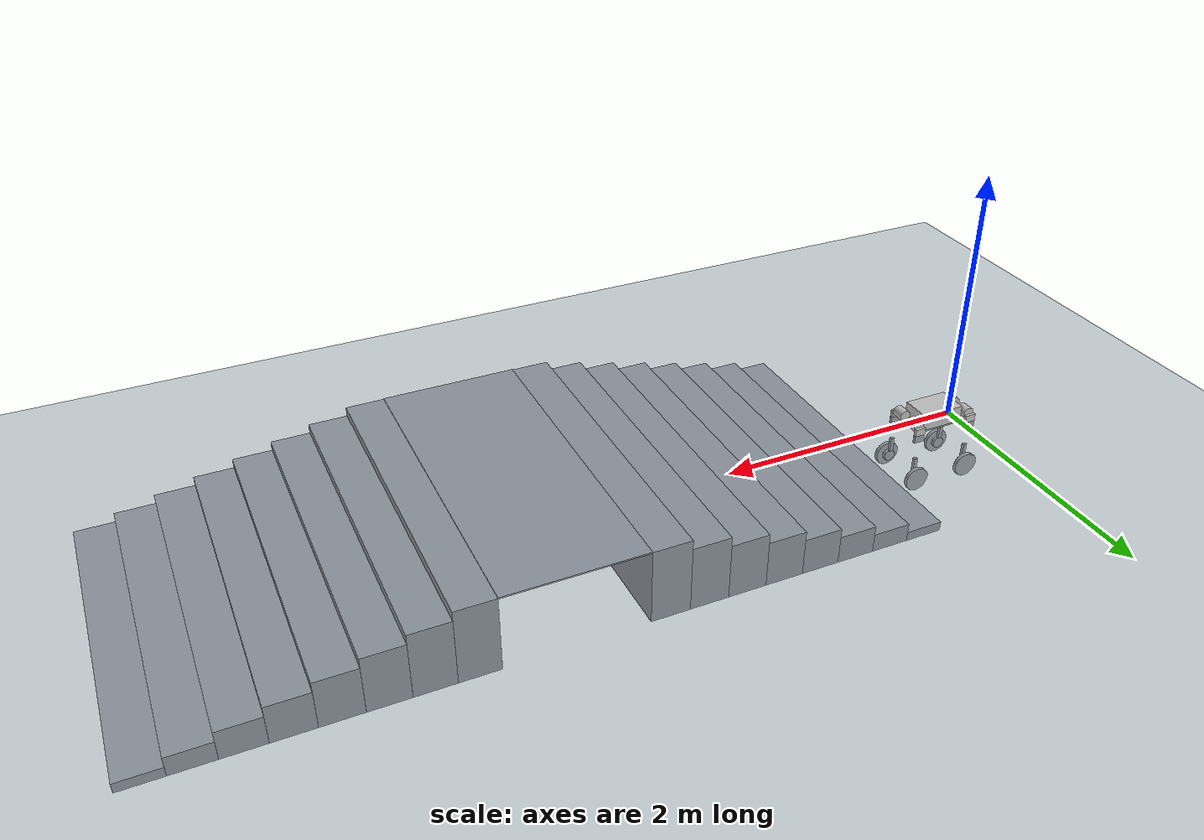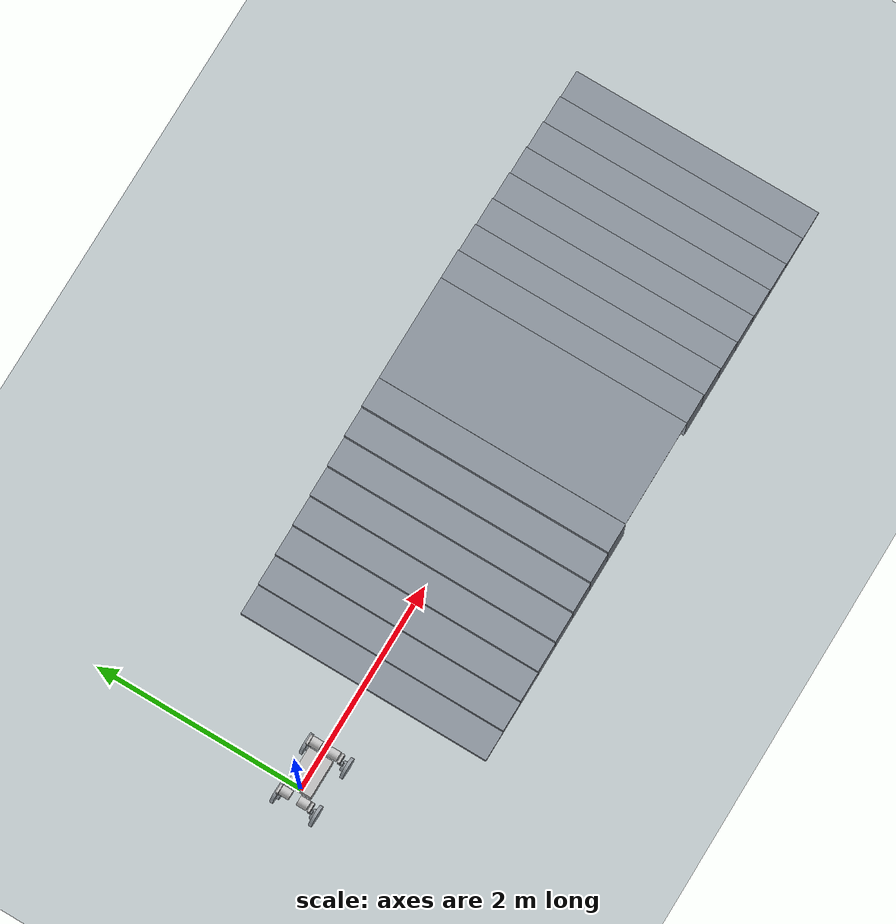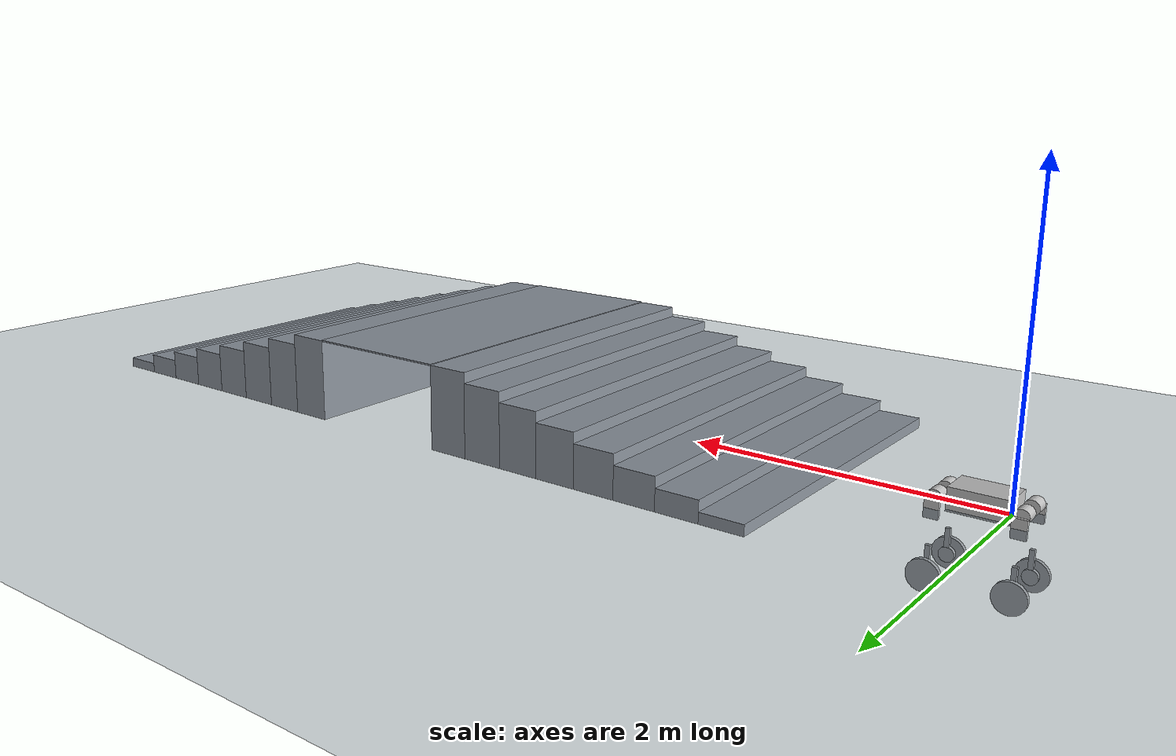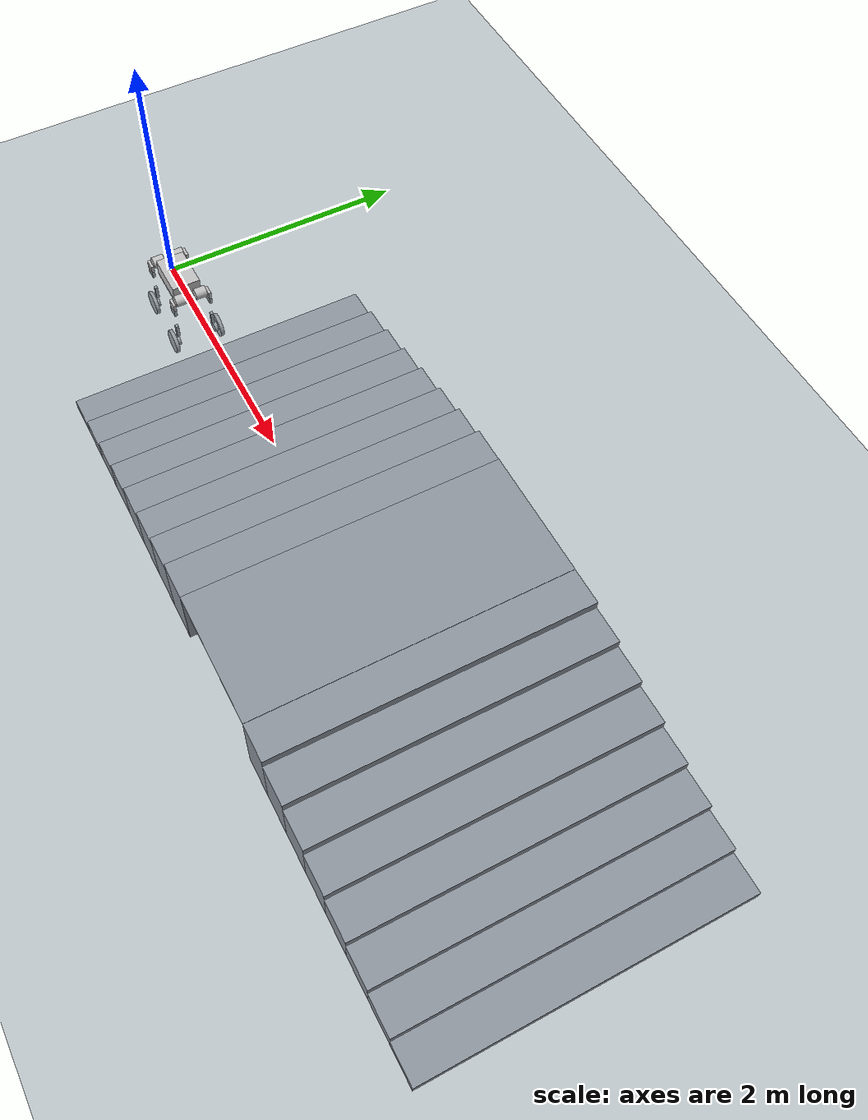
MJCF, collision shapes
<mujoco model="zexw_stairs">
  <include file="../model/robot.xml"/>
  <compiler meshdir="../model/assets"/>

  <option timestep="0.002" gravity="0 0 -9.81" integrator="implicitfast"/>

  <visual>
    <headlight diffuse="0.82 0.86 0.9" ambient="0.42 0.48 0.54" specular="0.15 0.15 0.18"/>
    <global azimuth="120" elevation="-20"/>
  </visual>

  <asset>
    <texture type="skybox" builtin="gradient" rgb1="0.3 0.5 0.7" rgb2="0 0 0" width="512" height="3072"/>
    <texture type="2d" name="groundplane" builtin="checker" mark="edge"
      rgb1="0.28 0.38 0.46" rgb2="0.16 0.23 0.30" markrgb="0.56 0.64 0.70" width="300" height="300"/>
    <material name="groundplane" texture="groundplane" texuniform="true" texrepeat="5 5" reflectance="0.2"/>
    <material name="terrain" rgba="0.55 0.58 0.62 1" reflectance="0.05"/>
  </asset>

  <worldbody>
    <light pos="0 0 3" dir="0 0 -1" directional="true"/>
    <geom name="floor" size="0 0 0.05" type="plane" material="groundplane" friction="0.8 0.05 0.01"/>
    <geom name="step_1" type="box" pos="1.1400 0.0000 0.0350" size="0.1400 1.2000 0.0350" material="terrain"/>
    <geom name="step_2" type="box" pos="1.4200 0.0000 0.0700" size="0.1400 1.2000 0.0700" material="terrain"/>
    <geom name="step_3" type="box" pos="1.7000 0.0000 0.1050" size="0.1400 1.2000 0.1050" material="terrain"/>
    <geom name="step_4" type="box" pos="1.9800 0.0000 0.1400" size="0.1400 1.2000 0.1400" material="terrain"/>
    <geom name="step_5" type="box" pos="2.2600 0.0000 0.1750" size="0.1400 1.2000 0.1750" material="terrain"/>
    <geom name="step_6" type="box" pos="2.5400 0.0000 0.2100" size="0.1400 1.2000 0.2100" material="terrain"/>
    <geom name="step_7" type="box" pos="2.8200 0.0000 0.2450" size="0.1400 1.2000 0.2450" material="terrain"/>
    <geom name="step_8" type="box" pos="3.1000 0.0000 0.2800" size="0.1400 1.2000 0.2800" material="terrain"/>
    <geom name="stair_top" type="box" pos="3.7400 0.0000 0.5600" size="0.5000 1.2000 0.0050" material="terrain"/>
    <geom name="step_down_8" type="box" pos="4.3800 0.0000 0.2800" size="0.1400 1.2000 0.2800" material="terrain"/>
    <geom name="step_down_7" type="box" pos="4.6600 0.0000 0.2450" size="0.1400 1.2000 0.2450" material="terrain"/>
    <geom name="step_down_6" type="box" pos="4.9400 0.0000 0.2100" size="0.1400 1.2000 0.2100" material="terrain"/>
    <geom name="step_down_5" type="box" pos="5.2200 0.0000 0.1750" size="0.1400 1.2000 0.1750" material="terrain"/>
    <geom name="step_down_4" type="box" pos="5.5000 0.0000 0.1400" size="0.1400 1.2000 0.1400" material="terrain"/>
    <geom name="step_down_3" type="box" pos="5.7800 0.0000 0.1050" size="0.1400 1.2000 0.1050" material="terrain"/>
    <geom name="step_down_2" type="box" pos="6.0600 0.0000 0.0700" size="0.1400 1.2000 0.0700" material="terrain"/>
    <geom name="step_down_1" type="box" pos="6.3400 0.0000 0.0350" size="0.1400 1.2000 0.0350" material="terrain"/>
  </worldbody>
</mujoco>

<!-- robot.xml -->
<mujoco model="wheelleg">
  <compiler angle="radian" meshdir="assets/"/>

  <default>
    <geom margin="0"/>
  </default>
  <asset>
    <mesh name="base_link" content_type="model/stl" file="base_link.STL"/>
    <mesh name="fl_hip_abduction_Link" content_type="model/stl" file="fl_hip_abduction_Link.STL"/>
    <mesh name="fl_hip_pitch_Link" content_type="model/stl" file="fl_hip_pitch_Link.STL"/>
    <mesh name="fl_knee_Link" content_type="model/stl" file="fl_knee_Link.STL"/>
    <mesh name="fl_wheel_Link" content_type="model/stl" file="fl_wheel_Link.STL"/>
    <mesh name="fr_hip_abduction_Link" content_type="model/stl" file="fr_hip_abduction_Link.STL"/>
    <mesh name="fr_hip_pitch_Link" content_type="model/stl" file="fr_hip_pitch_Link.STL"/>
    <mesh name="fr_knee_Link" content_type="model/stl" file="fr_knee_Link.STL"/>
    <mesh name="fr_wheel_Link" content_type="model/stl" file="fr_wheel_Link.STL"/>
    <mesh name="rl_hip_abduction_Link" content_type="model/stl" file="rl_hip_abduction_Link.STL"/>
    <mesh name="rl_hip_pitch_Link" content_type="model/stl" file="rl_hip_pitch_Link.STL"/>
    <mesh name="rl_knee_Link" content_type="model/stl" file="rl_knee_Link.STL"/>
    <mesh name="rl_wheel_Link" content_type="model/stl" file="rl_wheel_Link.STL"/>
    <mesh name="rr_hip_abduction_Link" content_type="model/stl" file="rr_hip_abduction_Link.STL"/>
    <mesh name="rr_hip_pitch_Link" content_type="model/stl" file="rr_hip_pitch_Link.STL"/>
    <mesh name="rr_knee_Link" content_type="model/stl" file="rr_knee_Link.STL"/>
    <mesh name="rr_wheel_Link" content_type="model/stl" file="rr_wheel_Link.STL"/>
  </asset>

  <worldbody>
    <body name="base_link">
      <inertial pos="0.1517 0.0002 0.0542" mass="6.5377" fullinertia="0.0402 0.1689 0.1840 -0.0001 0.0000 0.0000"/>
      <joint type="free"/>
      <geom type="mesh" contype="0" conaffinity="0" group="1" density="0" rgba="0.75294 0.75294 0.75294 1" mesh="base_link"/>
      <geom size="0.178 0.1175 0.073" pos="0.1518 0 0.054" type="box" rgba="0.75294 0.75294 0.75294 1"/>
      <body name="fl_hip_abduction_Link" pos="0.32826 0.066172 0.053981">
        <inertial pos="0.0488 -0.0026 0.0007" mass="0.63" fullinertia="0.0004 0.0007 0.0006 0.0000 0.0000 0.0000"/>
        <joint name="fl_hip_abduction_joint" pos="0 0 0" axis="1 0 0" range="-0.436 0.611" actuatorfrcrange="-17 17" damping="0.01" frictionloss="0.01" armature="0.0042"/>
        <geom type="mesh" contype="0" conaffinity="0" group="1" density="0" rgba="0.75294 0.75294 0.75294 1" mesh="fl_hip_abduction_Link"/>
        <body name="fl_hip_pitch_Link" pos="0.06389 -0.027344 0.00010727" quat="0.999997 -0.0025023 0 0">
          <inertial pos="0.0019 0.1119 -0.0480" mass="0.998" fullinertia="0.0066 0.0068 0.0011 0.0000 0.0000 0.0004"/>
          <joint name="fl_hip_pitch_joint" pos="0 0 0" axis="0 1 0" range="-2.58 2.58" actuatorfrcrange="-17 17" damping="0.01" frictionloss="0.01" armature="0.0042"/>
          <geom type="mesh" contype="0" conaffinity="0" group="1" density="0" rgba="0.75294 0.75294 0.75294 1" mesh="fl_hip_pitch_Link"/>
          <geom size="0.046 0.048" pos="0 0.048 0" quat="0.707105 0.707108 0 0" type="cylinder" rgba="0.75294 0.75294 0.75294 1"/>
          <geom size="0.0435 0.0115 0.06" pos="0 0.1155 -0.06" type="box" rgba="0.75294 0.75294 0.75294 1"/>
          <body name="fl_knee_Link" pos="0 0.1035 -0.25" quat="0.999997 0.0025023 0 0">
            <inertial pos="0.0002 0.0242 -0.1539" mass="0.6965" fullinertia="0.0045 0.0048 0.0006 0.0000 0.0000 0.0002"/>
            <joint name="fl_knee_joint" pos="0 0 0" axis="0 1 0" range="-2.65 2.65" actuatorfrcrange="-17 17" damping="0.01" frictionloss="0.01" armature="0.0042"/>
            <geom type="mesh" contype="0" conaffinity="0" group="1" density="0" rgba="0.75294 0.75294 0.75294 1" mesh="fl_knee_Link"/>
            <geom size="0.0475 0.015" pos="0 0.025 -0.20011" quat="0.707105 0.707108 0 0" type="cylinder" rgba="0.75294 0.75294 0.75294 1"/>
            <geom size="0.015 0.0125 0.06" pos="0 0.0125 -0.09" type="box" rgba="0.75294 0.75294 0.75294 1"/>
            <body name="fl_wheel_Link" pos="0 0.014699 -0.20011">
              <inertial pos="-0.0002 0.0407 -0.0001" mass="0.5505" fullinertia="0.0017 0.0034 0.0017 0.0000 0.0000 0.0000"/>
              <joint name="fl_wheel_joint" pos="0 0 0" axis="0 1 0" actuatorfrcrange="-17 17" damping="0.01" frictionloss="0.01" armature="0.0042"/>
              <geom type="mesh" contype="0" conaffinity="0" group="1" density="0" rgba="0.75294 0.75294 0.75294 1" mesh="fl_wheel_Link"/>
              <geom size="0.1 0.015" pos="0 0.04074 0" quat="0.707105 0.707108 0 0" type="cylinder" rgba="0.75294 0.75294 0.75294 1"/>
            </body>
          </body>
        </body>
      </body>
      <body name="fr_hip_abduction_Link" pos="0.32826 -0.065853 0.054034">
        <inertial pos="0.0488 0.0026 0.0008" mass="0.63" fullinertia="0.0004 0.0007 0.0006 0.0000 0.0000 0.0000"/>
        <joint name="fr_hip_abduction_joint" pos="0 0 0" axis="1 0 0" range="-0.611 0.436" actuatorfrcrange="-17 17" damping="0.01" frictionloss="0.01" armature="0.0042"/>
        <geom type="mesh" contype="0" conaffinity="0" group="1" density="0" rgba="0.75294 0.75294 0.75294 1" mesh="fr_hip_abduction_Link"/>
        <body name="fr_hip_pitch_Link" pos="0.06389 0.027311 -0.00036027" quat="0.999976 -0.00686995 0 0">
          <inertial pos="-0.0019 -0.1119 -0.048" mass="0.998" fullinertia="0.0066 0.0068 0.0011 0.0000 0.0000 0.0004"/>
          <joint name="fr_hip_pitch_joint" pos="0 0 0" axis="0 1 0" range="-2.58 2.58" actuatorfrcrange="-17 17" damping="0.01" frictionloss="0.01" armature="0.0042"/>
          <geom type="mesh" contype="0" conaffinity="0" group="1" density="0" rgba="0.75294 0.75294 0.75294 1" mesh="fr_hip_pitch_Link"/>
          <geom size="0.046 0.048" pos="0 -0.048 0" quat="0.707105 0.707108 0 0" type="cylinder" rgba="0.75294 0.75294 0.75294 1"/>
          <geom size="0.0435 0.0115 0.06" pos="0 -0.1155 -0.06" type="box" rgba="0.75294 0.75294 0.75294 1"/>
          <body name="fr_knee_Link" pos="-0.00075079 -0.1035 -0.25" quat="0.999976 0.00686995 0 0">
            <inertial pos="-0.0002 -0.0242 -0.1539" mass="0.6965" fullinertia="0.0045 0.0048 0.0006 0.0000 0.0000 0.0002"/>
            <joint name="fr_knee_joint" pos="0 0 0" axis="0 1 0" range="-2.65 2.65" actuatorfrcrange="-17 17" damping="0.01" frictionloss="0.01" armature="0.0042"/>
            <geom type="mesh" contype="0" conaffinity="0" group="1" density="0" rgba="0.75294 0.75294 0.75294 1" mesh="fr_knee_Link"/>
            <geom size="0.0475 0.015" pos="0 -0.025 -0.1998" quat="0.707105 0.707108 0 0" type="cylinder" rgba="0.75294 0.75294 0.75294 1"/>
            <geom size="0.015 0.0125 0.06" pos="0 -0.0125 -0.09" type="box" rgba="0.75294 0.75294 0.75294 1"/>
            <body name="fr_wheel_Link" pos="0 -0.018447 -0.1998">
              <inertial pos="0.0002 -0.0407 -0.0001" mass="0.5505" fullinertia="0.0017 0.0034 0.0017 0.0000 0.0000 0.0000"/>
              <joint name="fr_wheel_joint" pos="0 0 0" axis="0 1 0" actuatorfrcrange="-17 17" damping="0.01" frictionloss="0.01" armature="0.0042"/>
              <geom type="mesh" contype="0" conaffinity="0" group="1" density="0" rgba="0.75294 0.75294 0.75294 1" mesh="fr_wheel_Link"/>
              <geom size="0.1 0.015" pos="0 -0.040735 0" quat="0.707105 0.707108 0 0" type="cylinder" rgba="0.75294 0.75294 0.75294 1"/>
            </body>
          </body>
        </body>
      </body>
      <body name="rl_hip_abduction_Link" pos="-0.024743 0.066141 0.054034">
        <inertial pos="-0.0488 -0.0026 -0.0007" mass="0.63" fullinertia="0.0004 0.0007 0.0006 0.0000 0.0000 0.0000"/>
        <joint name="rl_hip_abduction_joint" pos="0 0 0" axis="1 0 0" range="-0.436 0.611" actuatorfrcrange="-17 17" damping="0.01" frictionloss="0.01" armature="0.0042"/>
        <geom type="mesh" contype="0" conaffinity="0" group="1" density="0" rgba="0.75294 0.75294 0.75294 1" mesh="rl_hip_abduction_Link"/>
        <body name="rl_hip_pitch_Link" pos="-0.06389 -0.027309 0.00045509">
          <inertial pos="0.0019 0.1119 -0.048" mass="0.998" fullinertia="0.0066 0.0068 0.0011 0.0000 -0.0001 -0.0005"/>
          <joint name="rl_hip_pitch_joint" pos="0 0 0" axis="0 1 0" range="-2.58 2.58" actuatorfrcrange="-17 17" damping="0.01" frictionloss="0.01" armature="0.0042"/>
          <geom type="mesh" contype="0" conaffinity="0" group="1" density="0" rgba="0.75294 0.75294 0.75294 1" mesh="rl_hip_pitch_Link"/>
          <geom size="0.046 0.048" pos="0 0.048 0" quat="0.707105 0.707108 0 0" type="cylinder" rgba="0.75294 0.75294 0.75294 1"/>
          <geom size="0.0435 0.0115 0.06" pos="0 0.1155 -0.06" type="box" rgba="0.75294 0.75294 0.75294 1"/>
          <body name="rl_knee_Link" pos="0 0.099459 -0.25163">
            <inertial pos="0.0002 0.0242 -0.1539" mass="0.6965" fullinertia="0.0045 0.0048 0.0006 0.0000 0.0000 -0.0003"/>
            <joint name="rl_knee_joint" pos="0 0 0" axis="0 1 0" range="-2.65 2.65" actuatorfrcrange="-17 17" damping="0.01" frictionloss="0.01" armature="0.0042"/>
            <geom type="mesh" contype="0" conaffinity="0" group="1" density="0" rgba="0.75294 0.75294 0.75294 1" mesh="rl_knee_Link"/>
            <geom size="0.0475 0.015" pos="0 0.025 -0.20027" quat="0.707105 0.707108 0 0" type="cylinder" rgba="0.75294 0.75294 0.75294 1"/>
            <geom size="0.015 0.0125 0.06" pos="0 0.0125 -0.09" type="box" rgba="0.75294 0.75294 0.75294 1"/>
            <body name="rl_wheel_Link" pos="0 0.012475 -0.20027">
              <inertial pos="-0.0002 0.0407 -0.0001" mass="0.5505" fullinertia="0.0017 0.0034 0.0017 0.0000 0.0000 0.0000"/>
              <joint name="rl_wheel_joint" pos="0 0 0" axis="0 1 0" actuatorfrcrange="-17 17" damping="0.01" frictionloss="0.01" armature="0.0042"/>
              <geom type="mesh" contype="0" conaffinity="0" group="1" density="0" rgba="0.75294 0.75294 0.75294 1" mesh="rl_wheel_Link"/>
              <geom size="0.1 0.015" pos="0 0.040737 0" quat="0.707105 0.707108 0 0" type="cylinder" rgba="0.75294 0.75294 0.75294 1"/>
            </body>
          </body>
        </body>
      </body>
      <body name="rr_hip_abduction_Link" pos="-0.024743 -0.065884 0.053981">
        <inertial pos="-0.0488 0.0026 0.0008" mass="0.63" fullinertia="0.0004 0.0007 0.0006 0.0000 0.0000 0.0000"/>
        <joint name="rr_hip_abduction_joint" pos="0 0 0" axis="1 0 0" range="-0.611 0.436" actuatorfrcrange="-17 17" damping="0.01" frictionloss="0.01" armature="0.0042"/>
        <geom type="mesh" contype="0" conaffinity="0" group="1" density="0" rgba="0.75294 0.75294 0.75294 1" mesh="rr_hip_abduction_Link"/>
        <body name="rr_hip_pitch_Link" pos="-0.06389 0.027341 0.00041625">
          <inertial pos="-0.0020 -0.1111 -0.0498" mass="0.998" fullinertia="0.0066 0.0068 0.0011 0.0000 -0.0001 -0.0003"/>
          <joint name="rr_hip_pitch_joint" pos="0 0 0" axis="0 1 0" range="-2.58 2.58" actuatorfrcrange="-17 17" damping="0.01" frictionloss="0.01" armature="0.0042"/>
          <geom type="mesh" contype="0" conaffinity="0" group="1" density="0" rgba="0.75294 0.75294 0.75294 1" mesh="rr_hip_pitch_Link"/>
          <geom size="0.046 0.048" pos="0 -0.048 0" quat="0.707105 0.707108 0 0" type="cylinder" rgba="0.75294 0.75294 0.75294 1"/>
          <geom size="0.0435 0.0115 0.06" pos="0 -0.1155 -0.06" type="box" rgba="0.75294 0.75294 0.75294 1"/>
          <body name="rr_knee_Link" pos="-0.00075079 -0.099408 -0.25165">
            <inertial pos="-0.0002 -0.0225 -0.1541" mass="0.6965" fullinertia="0.0045 0.0048 0.0006 0.0000 0.0000 -0.0002"/>
            <joint name="rr_knee_joint" pos="0 0 0" axis="0 1 0" range="-2.65 2.65" actuatorfrcrange="-17 17" damping="0.01" frictionloss="0.01" armature="0.0042"/>
            <geom type="mesh" contype="0" conaffinity="0" group="1" density="0" rgba="0.75294 0.75294 0.75294 1" mesh="rr_knee_Link"/>
            <geom size="0.0475 0.015" pos="0 -0.025 -0.20027" quat="0.707105 0.707108 0 0" type="cylinder" rgba="0.75294 0.75294 0.75294 1"/>
            <geom size="0.015 0.0125 0.06" pos="0 -0.0125 -0.09" type="box" rgba="0.75294 0.75294 0.75294 1"/>
            <body name="rr_wheel_Link" pos="0 -0.012435 -0.20027">
              <inertial pos="0.0002 -0.0407 -0.0005" mass="0.5505" fullinertia="0.0017 0.0034 0.0017 0.0000 0.0000 0.0000"/>
              <joint name="rr_wheel_joint" pos="0 0 0" axis="0 1 0" actuatorfrcrange="-17 17" damping="0.01" frictionloss="0.01" armature="0.0042"/>
              <geom type="mesh" contype="0" conaffinity="0" group="1" density="0" rgba="0.75294 0.75294 0.75294 1" mesh="rr_wheel_Link"/>
              <geom size="0.1 0.015" pos="0 -0.040737 0" quat="0.707105 0.707108 0 0" type="cylinder" rgba="0.75294 0.75294 0.75294 1"/>
            </body>
          </body>
        </body>
      </body>
      <body name="imu_link" pos="0.1518 0 0.127">
        <inertial pos="0 0 0" mass="0" diaginertia="0 0 0"/>
      </body>
    </body>
  </worldbody>

  <actuator>
    <general name="fl_hip_abduction_joint" joint="fl_hip_abduction_joint" forcerange="-17 17" gainprm="50" biasprm="0 -50 -1.5"/>
    <general name="fl_hip_pitch_joint" joint="fl_hip_pitch_joint" forcerange="-17 17" gainprm="50" biasprm="0 -50 -1.5"/>
    <general name="fl_knee_joint" joint="fl_knee_joint" forcerange="-17 17" gainprm="50" biasprm="0 -50 -1.5"/>
    <general name="fl_wheel_joint" joint="fl_wheel_joint" forcerange="-17 17" gainprm="1" biasprm="0 0 -1"/>
    <general name="fr_hip_abduction_joint" joint="fr_hip_abduction_joint" forcerange="-17 17" gainprm="50" biasprm="0 -50 -1.5"/>
    <general name="fr_hip_pitch_joint" joint="fr_hip_pitch_joint" forcerange="-17 17" gainprm="50" biasprm="0 -50 -1.5"/>
    <general name="fr_knee_joint" joint="fr_knee_joint" forcerange="-17 17" gainprm="50" biasprm="0 -50 -1.5"/>
    <general name="fr_wheel_joint" joint="fr_wheel_joint" forcerange="-17 17" gainprm="1" biasprm="0 0 -1"/>
    <general name="rl_hip_abduction_joint" joint="rl_hip_abduction_joint" forcerange="-17 17" gainprm="50" biasprm="0 -50 -1.5"/>
    <general name="rl_hip_pitch_joint" joint="rl_hip_pitch_joint" forcerange="-17 17" gainprm="50" biasprm="0 -50 -1.5"/>
    <general name="rl_knee_joint" joint="rl_knee_joint" forcerange="-17 17" gainprm="50" biasprm="0 -50 -1.5"/>
    <general name="rl_wheel_joint" joint="rl_wheel_joint" forcerange="-17 17" gainprm="1" biasprm="0 0 -1"/>
    <general name="rr_hip_abduction_joint" joint="rr_hip_abduction_joint" forcerange="-17 17" gainprm="50" biasprm="0 -50 -1.5"/>
    <general name="rr_hip_pitch_joint" joint="rr_hip_pitch_joint" forcerange="-17 17" gainprm="50" biasprm="0 -50 -1.5"/>
    <general name="rr_knee_joint" joint="rr_knee_joint" forcerange="-17 17" gainprm="50" biasprm="0 -50 -1.5"/>
    <general name="rr_wheel_joint" joint="rr_wheel_joint" forcerange="-17 17" gainprm="1" biasprm="0 0 -1"/>
  </actuator>
</mujoco>
